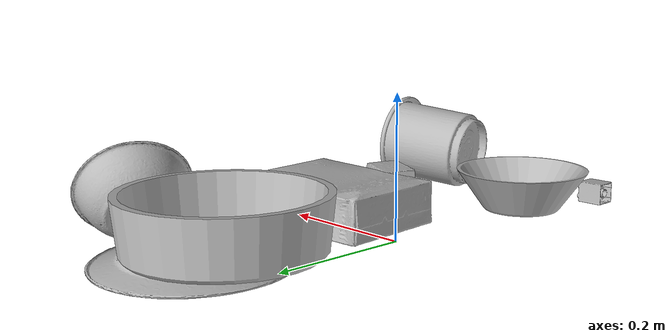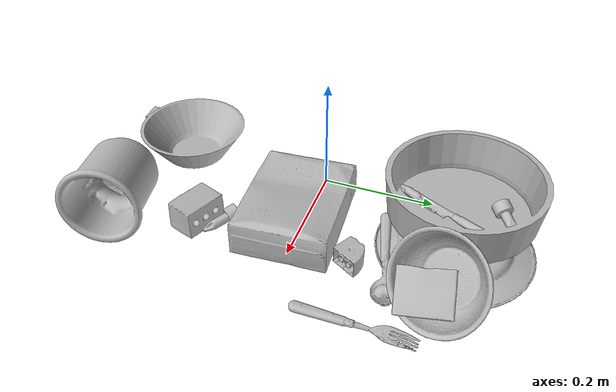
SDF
<sdf version="1.4">
  <world name="default">
    <light name="light1" type="point">
      <pose>0 0 1 0 0 0</pose>
      <diffuse>3 3 3 1</diffuse>
      <specular>3 3 3 1</specular>
    </light>
    <light name="light2" type="point">
      <pose>0 0.5 2 0 0 0</pose>
      <diffuse>1 1 1 1</diffuse>
      <specular>1 1 1 1</specular>
    </light>
    <light name="light3" type="point">
      <pose>0 0.5 2 0 0 0</pose>
      <diffuse>3 3 3 1</diffuse>
      <specular>3 3 3 1</specular>
    </light>
    <scene>
      <ambient>0.7 0.7 0.7</ambient>
    </scene>
    <model name="plate1">
      <link name="link_plate1">
        <collision name="default">
          <geometry>
            <mesh>
              <uri>model://plate/collision_meshes/collision.obj</uri>
              <scale>1.0 1.0 1.0</scale>
            </mesh>
          </geometry>
          <surface>
            <friction>
              <ode>
                <mu>0.5</mu>
                <mu2>0.5</mu2>
              </ode>
            </friction>
          <contact>
        <ode>
            <max_vel>0</max_vel>
            <min_depth>0.0001</min_depth>
            <kp>1e8</kp>
        </ode>
    </contact></surface>
        </collision>
        <visual name="default">
          <geometry>
            <mesh>
              <uri>model://plate/visual_meshes/visual.dae</uri>
              <scale>1.0 1.0 1.0</scale>
            </mesh>
          </geometry>
        </visual>
        <inertial>
          <mass>0.20059238374233246</mass>
          <pose>-0.0006044621695764363 0.00027825910365208983 -0.001056200242601335 0.002218800652723057 -0.0032254723094637602 0.45260588699646775</pose>
          <inertia>
            <ixx>0.00093837525</ixx>
            <iyy>0.0009294</iyy>
            <izz>0.0018353215</izz>
            <ixy>0</ixy>
            <ixz>0</ixz>
            <iyz>0</iyz>
          </inertia>
        </inertial>
      </link>
      <pose>0.09855058044195175 0.25438153743743896 0.013446253724396229 3.1414141288178308 -0.0031459403787817714 1.7952767829221534</pose>
    </model>
    <model name="plate2">
      <link name="link_plate2">
        <collision name="default">
          <geometry>
            <mesh>
              <uri>model://pan_tefal/collision_meshes/collision.obj</uri>
              <scale>1.0 1.0 1.0</scale>
            </mesh>
          </geometry>
          <surface>
            <friction>
              <ode>
                <mu>0.5</mu>
                <mu2>0.5</mu2>
              </ode>
            </friction>
          <contact>
        <ode>
            <max_vel>0</max_vel>
            <min_depth>0.0001</min_depth>
            <kp>1e8</kp>
        </ode>
    </contact></surface>
        </collision>
        <visual name="default">
          <geometry>
            <mesh>
              <uri>model://pan_tefal/visual_meshes/visual.dae</uri>
              <scale>1.0 1.0 1.0</scale>
            </mesh>
          </geometry>
        </visual>
        <inertial>
          <mass>0.5801199674606323</mass>
          <pose>-0.00018002555589191616 3.279062366345897e-05 -0.008514936082065105 0.0008190222895173471 -0.0003301392673675887 -0.3318501085377774</pose>
          <inertia>
            <ixx>0.00400454</ixx>
            <iyy>0.004030358</iyy>
            <izz>0.0073715877</izz>
            <ixy>0</ixy>
            <ixz>0</ixz>
            <iyz>0</iyz>
          </inertia>
        </inertial>
      </link>
      <pose>0.03614180535078049 0.25121429562568665 0.06589169800281525 -0.009177787216984083 -0.002879020013001049 -2.644959129444426</pose>
    </model>
    <model name="bowl1">
      <link name="link_bowl1">
        <collision name="default">
          <geometry>
            <mesh>
              <uri>model://bowl/collision_meshes/collision.obj</uri>
              <scale>1.0 1.0 1.0</scale>
            </mesh>
          </geometry>
          <surface>
            <friction>
              <ode>
                <mu>0.5</mu>
                <mu2>0.5</mu2>
              </ode>
            </friction>
          <contact>
        <ode>
            <max_vel>0</max_vel>
            <min_depth>0.0001</min_depth>
            <kp>1e8</kp>
        </ode>
    </contact></surface>
        </collision>
        <visual name="default">
          <geometry>
            <mesh>
              <uri>model://bowl/visual_meshes/visual.dae</uri>
              <scale>1.0 1.0 1.0</scale>
            </mesh>
          </geometry>
        </visual>
        <inertial>
          <mass>0.055578216910362244</mass>
          <pose>0.00020445502013899386 -0.0010302060982212424 -0.000804265437182039 -0.015764048263850368 0.014546844804774466 0.7140432473852318</pose>
          <inertia>
            <ixx>0.00012766755</ixx>
            <iyy>0.000124815</iyy>
            <izz>0.00021478078</izz>
            <ixy>0</ixy>
            <ixz>0</ixz>
            <iyz>0</iyz>
          </inertia>
        </inertial>
      </link>
      <pose>0.22837615013122559 0.2543301284313202 0.05893639102578163 0.792923844237812 -0.799221196396141 1.8119592143650776</pose>
    </model>
    <model name="bowl2">
      <link name="link_bowl2">
        <collision name="default">
          <geometry>
            <mesh>
              <uri>model://bowl_a/collision_meshes/collision.obj</uri>
              <scale>1.0 1.0 1.0</scale>
            </mesh>
          </geometry>
          <surface>
            <friction>
              <ode>
                <mu>0.5</mu>
                <mu2>0.5</mu2>
              </ode>
            </friction>
          <contact>
        <ode>
            <max_vel>0</max_vel>
            <min_depth>0.0001</min_depth>
            <kp>1e8</kp>
        </ode>
    </contact></surface>
        </collision>
        <visual name="default">
          <geometry>
            <mesh>
              <uri>model://bowl_a/visual_meshes/visual.dae</uri>
              <scale>1.0 1.0 1.0</scale>
            </mesh>
          </geometry>
        </visual>
        <inertial>
          <mass>0.31475314497947693</mass>
          <pose>0.00027867438620887697 4.730821092380211e-05 -0.0013765294570475817 -0.0009805369688078041 -0.0010938258688624044 -0.19123886294168949</pose>
          <inertia>
            <ixx>0.00089611666</ixx>
            <iyy>0.00090161816</iyy>
            <izz>0.0015937777</izz>
            <ixy>0</ixy>
            <ixz>0</ixz>
            <iyz>0</iyz>
          </inertia>
        </inertial>
      </link>
      <pose>1.8940017980639823e-05 -0.26911959052085876 0.03038301132619381 -1.1335929934328065e-08 -2.0306590159374516e-08 -1.8975624458805358</pose>
    </model>
    <model name="silverware1">
      <link name="link_silverware1">
        <collision name="default">
          <geometry>
            <mesh>
              <uri>model://spoon/collision_meshes/collision.obj</uri>
              <scale>1.0 1.0 1.0</scale>
            </mesh>
          </geometry>
          <surface>
            <friction>
              <ode>
                <mu>0.5</mu>
                <mu2>0.5</mu2>
              </ode>
            </friction>
          <contact>
        <ode>
            <max_vel>0</max_vel>
            <min_depth>0.0001</min_depth>
            <kp>1e8</kp>
        </ode>
    </contact></surface>
        </collision>
        <visual name="default">
          <geometry>
            <mesh>
              <uri>model://spoon/visual_meshes/visual.dae</uri>
              <scale>1.0 1.0 1.0</scale>
            </mesh>
          </geometry>
        </visual>
        <inertial>
          <mass>0.019504988566040993</mass>
          <pose>-0.005526313092559576 -0.0016034174477681518 -0.0007271654321812093 0.03521671064592188 -0.039065845080026425 0.006150613244710899</pose>
          <inertia>
            <ixx>1.0848988e-06</ixx>
            <iyy>7.421582e-05</iyy>
            <izz>7.4750846e-05</izz>
            <ixy>0</ixy>
            <ixz>0</ixz>
            <iyz>0</iyz>
          </inertia>
        </inertial>
      </link>
      <pose>0.1712496429681778 0.1578424870967865 0.01314771082252264 0.026873077851010712 0.10914856999315412 0.2353779456286313</pose>
    </model>
    <model name="box1">
      <link name="link_box1">
        <collision name="default">
          <geometry>
            <mesh>
              <uri>model://cracker_box/collision_meshes/collision.obj</uri>
              <scale>1.0 1.0 1.0</scale>
            </mesh>
          </geometry>
          <surface>
            <friction>
              <ode>
                <mu>0.5</mu>
                <mu2>0.5</mu2>
              </ode>
            </friction>
          <contact>
        <ode>
            <max_vel>0</max_vel>
            <min_depth>0.0001</min_depth>
            <kp>1e8</kp>
        </ode>
    </contact></surface>
        </collision>
        <visual name="default">
          <geometry>
            <mesh>
              <uri>model://cracker_box/visual_meshes/visual.dae</uri>
              <scale>1.0 1.0 1.0</scale>
            </mesh>
          </geometry>
        </visual>
        <inertial>
          <mass>2.5078790187835693</mass>
          <pose>0.0009464150061830878 0.00025434247800149024 -0.0017029535956680775 -0.00031620768203149627 -0.01110648960041945 0.002546794303792924</pose>
          <inertia>
            <ixx>0.0063789245</ixx>
            <iyy>0.010532858</iyy>
            <izz>0.015031353</izz>
            <ixy>0</ixy>
            <ixz>0</ixz>
            <iyz>0</iyz>
          </inertia>
        </inertial>
      </link>
      <pose>0.12589186429977417 -0.011882772669196129 0.036384109407663345 -0.014050966077878 -0.005016104062152767 0.06851035271919335</pose>
    </model>
    <model name="box2">
      <link name="link_box2">
        <collision name="default">
          <geometry>
            <mesh>
              <uri>model://gelatin_box/collision_meshes/collision.obj</uri>
              <scale>1.0 1.0 1.0</scale>
            </mesh>
          </geometry>
          <surface>
            <friction>
              <ode>
                <mu>0.5</mu>
                <mu2>0.5</mu2>
              </ode>
            </friction>
          <contact>
        <ode>
            <max_vel>0</max_vel>
            <min_depth>0.0001</min_depth>
            <kp>1e8</kp>
        </ode>
    </contact></surface>
        </collision>
        <visual name="default">
          <geometry>
            <mesh>
              <uri>model://gelatin_box/visual_meshes/visual.dae</uri>
              <scale>1.0 1.0 1.0</scale>
            </mesh>
          </geometry>
        </visual>
        <inertial>
          <mass>0.1847851723432541</mass>
          <pose>0.0004319618456065655 0.00011156872642459348 -0.0003640321083366871 -0.001050372098056681 -0.004755818221834168 0.016440563197305347</pose>
          <inertia>
            <ixx>0.00013044327</ixx>
            <iyy>9.317494e-05</iyy>
            <izz>0.0001985637</izz>
            <ixy>0</ixy>
            <ixz>0</ixz>
            <iyz>0</iyz>
          </inertia>
        </inertial>
      </link>
      <pose>0.24802741408348083 0.23234131932258606 0.0455436035990715 -0.022641515262026773 -0.6793590898161088 -2.9517227589737343</pose>
    </model>
    <model name="cup1">
      <link name="link_cup1">
        <collision name="default">
          <geometry>
            <mesh>
              <uri>model://d_cups/collision_meshes/collision.obj</uri>
              <scale>2.0 2.0 2.0</scale>
            </mesh>
          </geometry>
          <surface>
            <friction>
              <ode>
                <mu>0.5</mu>
                <mu2>0.5</mu2>
              </ode>
            </friction>
          <contact>
        <ode>
            <max_vel>0</max_vel>
            <min_depth>0.0001</min_depth>
            <kp>1e8</kp>
        </ode>
    </contact></surface>
        </collision>
        <visual name="default">
          <geometry>
            <mesh>
              <uri>model://d_cups/visual_meshes/visual.dae</uri>
              <scale>2.0 2.0 2.0</scale>
            </mesh>
          </geometry>
        </visual>
        <inertial>
          <mass>0.47328615188598633</mass>
          <pose>0.0016136143822222948 0.0038234798703342676 -0.004533303435891867 0.24012870248045765 -0.247092443015796 0.5942312682521343</pose>
          <inertia>
            <ixx>0.0015850074</ixx>
            <iyy>0.0015804201</iyy>
            <izz>0.0014347013</izz>
            <ixy>0</ixy>
            <ixz>0</ixz>
            <iyz>0</iyz>
          </inertia>
        </inertial>
      </link>
      <pose>0.20883142948150635 -0.3078005015850067 0.06489396840333939 -1.4810718355133794 0.3511459700262066 -1.3102741340828041</pose>
    </model>
    <model name="silverware2">
      <link name="link_silverware2">
        <collision name="default">
          <geometry>
            <mesh>
              <uri>model://knife/collision_meshes/collision.obj</uri>
              <scale>1.0 1.0 1.0</scale>
            </mesh>
          </geometry>
          <surface>
            <friction>
              <ode>
                <mu>0.5</mu>
                <mu2>0.5</mu2>
              </ode>
            </friction>
          <contact>
        <ode>
            <max_vel>0</max_vel>
            <min_depth>0.0001</min_depth>
            <kp>1e8</kp>
        </ode>
    </contact></surface>
        </collision>
        <visual name="default">
          <geometry>
            <mesh>
              <uri>model://knife/visual_meshes/visual.dae</uri>
              <scale>1.0 1.0 1.0</scale>
            </mesh>
          </geometry>
        </visual>
        <inertial>
          <mass>0.03430156037211418</mass>
          <pose>-0.02378525398671627 0.0015275129117071629 5.062017953605391e-05 0.07305950900181668 0.01724842494985857 -0.007409825116106198</pose>
          <inertia>
            <ixx>9.736174e-07</ixx>
            <iyy>0.00013178105</iyy>
            <izz>0.00013209462</izz>
            <ixy>0</ixy>
            <ixz>0</ixz>
            <iyz>0</iyz>
          </inertia>
        </inertial>
      </link>
      <pose>0.06549695134162903 0.2348109781742096 0.04081328585743904 2.9083295213579827 0.031097051799419108 -2.0570336919548176</pose>
    </model>
    <model name="silverware3">
      <link name="link_silverware3">
        <collision name="default">
          <geometry>
            <mesh>
              <uri>model://fork/collision_meshes/collision.obj</uri>
              <scale>1.0 1.0 1.0</scale>
            </mesh>
          </geometry>
          <surface>
            <friction>
              <ode>
                <mu>0.5</mu>
                <mu2>0.5</mu2>
              </ode>
            </friction>
          <contact>
        <ode>
            <max_vel>0</max_vel>
            <min_depth>0.0001</min_depth>
            <kp>1e8</kp>
        </ode>
    </contact></surface>
        </collision>
        <visual name="default">
          <geometry>
            <mesh>
              <uri>model://fork/visual_meshes/visual.dae</uri>
              <scale>1.0 1.0 1.0</scale>
            </mesh>
          </geometry>
        </visual>
        <inertial>
          <mass>0.014111565425992012</mass>
          <pose>-0.02957005426287651 0.0004658825055230409 0.00032188615296036005 -0.01355195006397287 -0.010977841645129428 0.014453906946454091</pose>
          <inertia>
            <ixx>4.9469025e-07</ixx>
            <iyy>3.684124e-05</iyy>
            <izz>3.7062495e-05</izz>
            <ixy>0</ixy>
            <ixz>0</ixz>
            <iyz>0</iyz>
          </inertia>
        </inertial>
      </link>
      <pose>0.30644622445106506 0.14316123723983765 0.007446621544659138 -3.063494043425872 0.0028358588366357075 1.5611983034826906</pose>
    </model>
    <model name="toy1">
      <link name="link_toy1">
        <collision name="default">
          <geometry>
            <mesh>
              <uri>model://b_lego_duplo/collision_meshes/collision.obj</uri>
              <scale>1.0 1.0 1.0</scale>
            </mesh>
          </geometry>
          <surface>
            <friction>
              <ode>
                <mu>0.5</mu>
                <mu2>0.5</mu2>
              </ode>
            </friction>
          <contact>
        <ode>
            <max_vel>0</max_vel>
            <min_depth>0.0001</min_depth>
            <kp>1e8</kp>
        </ode>
    </contact></surface>
        </collision>
        <visual name="default">
          <geometry>
            <mesh>
              <uri>model://b_lego_duplo/visual_meshes/visual.dae</uri>
              <scale>1.0 1.0 1.0</scale>
            </mesh>
          </geometry>
        </visual>
        <inertial>
          <mass>0.029451588168740273</mass>
          <pose>-0.00011053002526750788 -9.152366146736313e-06 0.0019294293597340584 -0.03749525813168218 -0.026353287435260622 0.45191626186006195</pose>
          <inertia>
            <ixx>6.0274892e-06</ixx>
            <iyy>6.0680068e-06</iyy>
            <izz>5.3702943e-06</izz>
            <ixy>0</ixy>
            <ixz>0</ixz>
            <iyz>0</iyz>
          </inertia>
        </inertial>
      </link>
      <pose>-0.052139945328235626 -0.383857399225235 0.016152340918779373 -3.121152945898868 1.5624595156792123 -3.112673564136568</pose>
    </model>
    <model name="toy2">
      <link name="link_toy2">
        <collision name="default">
          <geometry>
            <mesh>
              <uri>model://foam_brick/collision_meshes/collision.obj</uri>
              <scale>1.0 1.0 1.0</scale>
            </mesh>
          </geometry>
          <surface>
            <friction>
              <ode>
                <mu>0.5</mu>
                <mu2>0.5</mu2>
              </ode>
            </friction>
          <contact>
        <ode>
            <max_vel>0</max_vel>
            <min_depth>0.0001</min_depth>
            <kp>1e8</kp>
        </ode>
    </contact></surface>
        </collision>
        <visual name="default">
          <geometry>
            <mesh>
              <uri>model://foam_brick/visual_meshes/visual.dae</uri>
              <scale>1.0 1.0 1.0</scale>
            </mesh>
          </geometry>
        </visual>
        <inertial>
          <mass>0.2443593144416809</mass>
          <pose>-0.0002522472059354186 0.00034584393142722547 -0.0002532101352699101 -0.2940184651969868 0.017274440266988163 -0.0007449890747987857</pose>
          <inertia>
            <ixx>0.00010674072</ixx>
            <iyy>0.00017041703</iyy>
            <izz>0.00017258283</izz>
            <ixy>0</ixy>
            <ixz>0</ixz>
            <iyz>0</iyz>
          </inertia>
        </inertial>
      </link>
      <pose>0.18090330064296722 -0.1713683307170868 0.026264909654855728 -1.581933742631013 -0.012729190537408641 -0.36969145175836876</pose>
    </model>
    <model name="toy3">
      <link name="link_toy3">
        <collision name="default">
          <geometry>
            <mesh>
              <uri>model://d_lego_duplo/collision_meshes/collision.obj</uri>
              <scale>1.0 1.0 1.0</scale>
            </mesh>
          </geometry>
          <surface>
            <friction>
              <ode>
                <mu>0.5</mu>
                <mu2>0.5</mu2>
              </ode>
            </friction>
          <contact>
        <ode>
            <max_vel>0</max_vel>
            <min_depth>0.0001</min_depth>
            <kp>1e8</kp>
        </ode>
    </contact></surface>
        </collision>
        <visual name="default">
          <geometry>
            <mesh>
              <uri>model://d_lego_duplo/visual_meshes/visual.dae</uri>
              <scale>1.0 1.0 1.0</scale>
            </mesh>
          </geometry>
        </visual>
        <inertial>
          <mass>0.033699363470077515</mass>
          <pose>0.002830563113093376 0.0001636613014852628 0.0008589802891947329 0.08010879334546937 -0.38355231252286476 0.0010296922462193392</pose>
          <inertia>
            <ixx>6.5236977e-06</ixx>
            <iyy>9.258897e-06</iyy>
            <izz>8.928908e-06</izz>
            <ixy>0</ixy>
            <ixz>0</ixz>
            <iyz>0</iyz>
          </inertia>
        </inertial>
      </link>
      <pose>0.18469376862049103 0.1070571020245552 0.016249628737568855 1.5793366830714428 -0.013119790252269378 -2.0817948582138546</pose>
    </model>
    <model name="toy4">
      <link name="link_toy4">
        <collision name="default">
          <geometry>
            <mesh>
              <uri>model://d_toy_airplane/collision_meshes/collision.obj</uri>
              <scale>1.0 1.0 1.0</scale>
            </mesh>
          </geometry>
          <surface>
            <friction>
              <ode>
                <mu>0.5</mu>
                <mu2>0.5</mu2>
              </ode>
            </friction>
          <contact>
        <ode>
            <max_vel>0</max_vel>
            <min_depth>0.0001</min_depth>
            <kp>1e8</kp>
        </ode>
    </contact></surface>
        </collision>
        <visual name="default">
          <geometry>
            <mesh>
              <uri>model://d_toy_airplane/visual_meshes/visual.dae</uri>
              <scale>1.0 1.0 1.0</scale>
            </mesh>
          </geometry>
        </visual>
        <inertial>
          <mass>0.016584575176239014</mass>
          <pose>9.410303027834743e-05 -5.809338472317904e-05 -0.01172809861600399 0.0002669776058846709 0.004678969238403601 0.5194647440200774</pose>
          <inertia>
            <ixx>4.9717323e-06</ixx>
            <iyy>4.975482e-06</iyy>
            <izz>1.5009987e-06</izz>
            <ixy>0</ixy>
            <ixz>0</ixz>
            <iyz>0</iyz>
          </inertia>
        </inertial>
      </link>
      <pose>0.1769678294658661 -0.12927763164043427 0.011753484606742859 1.793602008303517 0.4923581565524071 1.014805656991189</pose>
    </model>
    <model name="toy5">
      <link name="link_toy5">
        <collision name="default">
          <geometry>
            <mesh>
              <uri>model://e_toy_airplane/collision_meshes/collision.obj</uri>
              <scale>1.0 1.0 1.0</scale>
            </mesh>
          </geometry>
          <surface>
            <friction>
              <ode>
                <mu>0.5</mu>
                <mu2>0.5</mu2>
              </ode>
            </friction>
          <contact>
        <ode>
            <max_vel>0</max_vel>
            <min_depth>0.0001</min_depth>
            <kp>1e8</kp>
        </ode>
    </contact></surface>
        </collision>
        <visual name="default">
          <geometry>
            <mesh>
              <uri>model://e_toy_airplane/visual_meshes/visual.dae</uri>
              <scale>1.0 1.0 1.0</scale>
            </mesh>
          </geometry>
        </visual>
        <inertial>
          <mass>0.01714155077934265</mass>
          <pose>0.00011740483023459092 -2.2482887288788334e-05 -0.011187203228473663 0.005518467343725363 0.009228313895921611 0.15041273076279138</pose>
          <inertia>
            <ixx>5.2317982e-06</ixx>
            <iyy>5.178279e-06</iyy>
            <izz>1.5723607e-06</izz>
            <ixy>0</ixy>
            <ixz>0</ixz>
            <iyz>0</iyz>
          </inertia>
        </inertial>
      </link>
      <pose>0.05181480944156647 0.3281276226043701 0.04614987224340439 2.445196563428539 -1.1999315006280071 1.3389023636097341</pose>
    </model>
  <physics type="ode">
      <max_contacts>50</max_contacts>
      <ode>
        <solver>
          <type>quick</type>
          <iters>75</iters>
        </solver>
        <constraints>
          <contact_max_correcting_vel>0</contact_max_correcting_vel>
          <contact_surface_layer>0</contact_surface_layer>
        </constraints>
      </ode>
    </physics></world>
</sdf>
